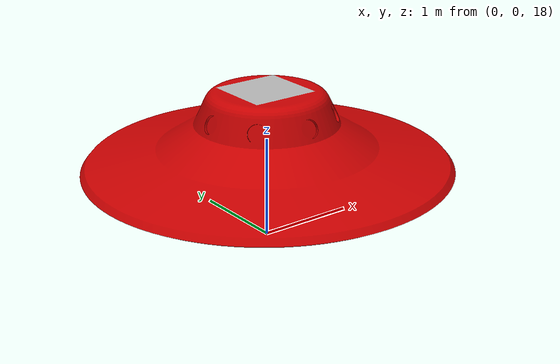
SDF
<?xml version="1.0" ?>

    <?xml version="1.0" ?>
    <sdf version="1.7">
        <world name="default">
            <scene>
                <shadows>false</shadows>
                <ambient>0.5 0.5 0.5 1.0</ambient>
            <grid>false</grid>
            <sky>
                <time>12</time>
                <sunrise>10</sunrise>
                <sunset>21</sunset>
                <clouds>
                <humidity>0</humidity>
                <cloud_ambient>0.9 0.9 1.0 1.0</cloud_ambient>
                </clouds>
            </sky>
            </scene>

            <light type="directional" name="sun">
                <pose>0 0 30 0 0 0</pose>
                <cast_shadows>false</cast_shadows>
                <diffuse>.9 .9 .9 1</diffuse>
                <specular>.1 .1 .1 1</specular>
                <attenuation>
                    <range>20</range>
                </attenuation>
                <direction>-1 -1 -1</direction>
            </light>

            <include>
                <uri>model://ground_surface</uri>
                <pose>0 0 0.02 0 0 0</pose>
                <static>true</static>
            </include>

            <include>
                <uri>model://arena</uri>
                <pose> 0 0 0.03 0 0 0 </pose>
                <static>true</static>

            </include>

            <include>
                <uri>model://e_camera</uri>
                <pose>0 0 18 0 0 1.57</pose>
            </include>

        </world>
    </sdf>

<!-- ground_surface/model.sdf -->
<sdf version='1.6'>
  <model name='ground_surface'>
    <link name='ground_surface::link_0'>
      <pose frame=''>0 0 0 0 -0 0</pose>
      <self_collide>0</self_collide>
      <enable_wind>0</enable_wind>
      <kinematic>0</kinematic>
      <gravity>1</gravity>
      <inertial>
        <mass>1</mass>
        <pose frame=''>0 0 0 0 -0 0</pose>
        <inertia>
          <ixx>1</ixx>
          <ixy>0</ixy>
          <ixz>0</ixz>
          <iyy>1</iyy>
          <iyz>0</iyz>
          <izz>1</izz>
        </inertia>
      </inertial>
      <visual name='visual'>
        <pose frame=''>0 0 0 0 -0 0</pose>
        <geometry>
          <mesh>
            <uri>model://ground_surface/meshes/ground_surface.dae</uri>
            <scale>10 10 10</scale>
          </mesh>
        </geometry>
        <transparency>0</transparency>
        <cast_shadows>0</cast_shadows>
      </visual>
      <collision name="collision">
        <geometry>
          <mesh>
            <uri>model://ground_surface/meshes/ground_surface.dae</uri>
            <scale>10 10 10</scale>
          </mesh>
        </geometry>
      </collision>
    </link>
    <static>1</static>
    <allow_auto_disable>1</allow_auto_disable>
  </model>
</sdf>

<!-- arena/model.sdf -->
<sdf version='1.6'>
  <model name='arena'>
    <link name='arena::link_0'>
      <pose frame=''>0 0 0 0 -0 0</pose>
      <self_collide>0</self_collide>
      <enable_wind>0</enable_wind>
      <kinematic>0</kinematic>
      <gravity>1</gravity>
      <inertial>
        <mass>1</mass>
        <pose frame=''>0 0 0 0 -0 0</pose>
        <inertia>
          <ixx>1</ixx>
          <ixy>0</ixy>
          <ixz>0</ixz>
          <iyy>1</iyy>
          <iyz>0</iyz>
          <izz>1</izz>
        </inertia>
      </inertial>
      <visual name='visual'>
        <pose frame=''>0 0 0 0 -0 0</pose>
        <geometry>
          <mesh>
            <uri>model://arena/meshes/arena.dae</uri>
            <scale>2 2 2</scale>
          </mesh>
        </geometry>
        <transparency>0</transparency>
        <cast_shadows>False</cast_shadows>
      </visual>
      <collision name="collision">
        <geometry>
          <mesh>
            <uri>model://arena/meshes/arena.dae</uri>
            <scale>2 2 2</scale>
          </mesh>
        </geometry>
      </collision>
    </link>
    <static>1</static>
    <allow_auto_disable>1</allow_auto_disable>
  </model>
</sdf>

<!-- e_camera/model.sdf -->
<sdf version="1.6">
  <model name="e_camera">
    <link name="camera_1_link">
      <gravity>false</gravity>
      <inertial>
        <mass>0.1</mass>
        <inertia>
          <ixx>0.000166667</ixx>
          <iyy>0.000166667</iyy>
          <izz>0.000166667</izz>
        </inertia>
      </inertial>

      <collision name="collision">
        <pose>0 0 0 0 0 0</pose>
        <geometry>
          <mesh>
            <uri>model://e_camera/meshes/camera.dae</uri>
            <scale>0.03 0.03 0.03</scale>
          </mesh>
        </geometry>
      </collision>

      <visual name="visual">
        <pose>0 0 0 0 0 0</pose>
        <geometry>
          <mesh>
            <uri>model://e_camera/meshes/camera.dae</uri>
            <scale>0.03 0.03 0.03</scale>
          </mesh>
        </geometry>
      </visual>

      <sensor name='camera' type='camera'>
        <pose>0 0 0 1.57 1.57 1.57</pose>
        <visualize>true</visualize>
        <update_rate>10</update_rate>
        <camera name='camera_1'>
            <horizontal_fov>1.2</horizontal_fov>
            <aspect_ratio>2.0</aspect_ratio>

            <image>
                <width>500</width>
							  <height>500</height>
                <format>R8G8B8</format>
            </image>
            <clip>
                <near>0.2</near>
                <far>800</far>
            </clip>
        </camera>
        <plugin name='camera_control' filename='libgazebo_ros_camera.so'>
						<alwaysOn>true</alwaysOn>
						<updateRate>30</updateRate>
						<cameraName>gazebo/overhead_cam</cameraName>
						<imageTopicName>image_rect_color</imageTopicName>
						<cameraInfoTopicName>camera_info</cameraInfoTopicName>
						<frameName>overhead_cam_frame</frameName>
				</plugin>
        <always_on>1</always_on>
				<update_rate>30</update_rate>

      </sensor>

    </link>

  </model>

</sdf>
